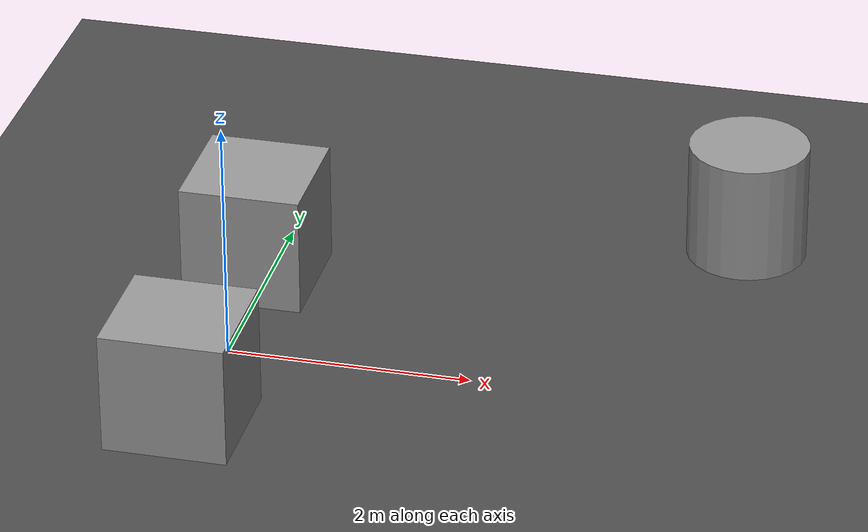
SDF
<sdf version="1.6">
 <world name="default">
  <light name="sun" type="directional">
   <pose>0 0 10 0 -0 0</pose>
   <diffuse>0.8 0.8 0.8 1</diffuse>
   <specular>0.2 0.2 0.2 1</specular>
   <attenuation>
    <range>1000</range>
    <constant>0.9</constant>
    <linear>0.01</linear>
    <quadratic>0.001</quadratic>
   </attenuation>
   <direction>-0.5 0.1 -0.9</direction>
  </light>
  <model name="ground_plane">
   <static>1</static>
   <link name="link">
    <collision name="collision">
     <geometry><plane><normal>0 0 1</normal><size>100 100</size></plane></geometry>
     <surface><friction><ode><mu>100</mu><mu2>50</mu2></ode></friction></surface>
    </collision>
    <visual name="visual">
     <cast_shadows>0</cast_shadows>
     <geometry><plane><normal>0 0 1</normal><size>100 100</size></plane></geometry>
     <material>
      <script><uri>file://media/materials/scripts/gazebo.material</uri><name>Gazebo/Grey</name></script>
     </material>
    </visual>
    <velocity_decay><linear>0</linear><angular>0</angular></velocity_decay>
   </link>
  </model>
  <physics name="default_physics" default="0" type="ode">
   <max_step_size>0.01</max_step_size>
   <real_time_factor>1</real_time_factor>
   <real_time_update_rate>100</real_time_update_rate>
  </physics>
  <scene>
   <ambient>0.4 0.4 0.4 1</ambient>
   <background>0.7 0.7 0.7 1</background>
   <shadows>1</shadows>
   <sky><clouds><speed>12</speed></clouds></sky>
  </scene>
  <model name="asphalt_plane">
   <static>1</static>
   <link name="link">
    <collision name="collision"><geometry><box><size>20 20 0.1</size></box></geometry></collision>
    <visual name="visual">
     <cast_shadows>0</cast_shadows>
     <geometry><box><size>20 20 0.1</size></box></geometry>
     <material>
      <script>
       <uri>model://asphalt_plane/materials/scripts</uri>
       <uri>model://asphalt_plane/materials/textures</uri>
       <name>vrc/asphalt</name>
      </script>
     </material>
    </visual>
    <velocity_decay><linear>0</linear><angular>0</angular></velocity_decay>
   </link>
   <pose>0.047328 -0.078074 0 0 -0 0</pose>
  </model>
  <gravity>0 0 -9.8</gravity>
  <magnetic_field>6e-06 2.3e-05 -4.2e-05</magnetic_field>
  <atmosphere type="adiabatic"/>
  <audio><device>default</device></audio>
  <spherical_coordinates>
   <surface_model>EARTH_WGS84</surface_model>
   <latitude_deg>0</latitude_deg>
   <longitude_deg>0</longitude_deg>
   <elevation>0</elevation>
   <heading_deg>0</heading_deg>
  </spherical_coordinates>
  <model name="unit_box">
   <pose>-0.019663 -1.22457 0.54967 -0.00066 -0 -5e-06</pose>
   <link name="link">
    <inertial>
     <mass>1</mass>
     <inertia>
      <ixx>0.166667</ixx>
      <ixy>0</ixy>
      <ixz>0</ixz>
      <iyy>0.166667</iyy>
      <iyz>0</iyz>
      <izz>0.166667</izz>
     </inertia>
    </inertial>
    <collision name="collision"><geometry><box><size>1 1 1</size></box></geometry></collision>
    <visual name="visual">
     <geometry><box><size>1 1 1</size></box></geometry>
     <material>
      <script><name>Gazebo/Grey</name><uri>file://media/materials/scripts/gazebo.material</uri></script>
     </material>
    </visual>
   </link>
  </model>
  <model name="unit_box_0">
   <pose>-0.071597 1.14029 0.54967 -0.00066 -0 -5e-06</pose>
   <link name="link">
    <inertial>
     <mass>1</mass>
     <inertia>
      <ixx>0.166667</ixx>
      <ixy>0</ixy>
      <ixz>0</ixz>
      <iyy>0.166667</iyy>
      <iyz>0</iyz>
      <izz>0.166667</izz>
     </inertia>
    </inertial>
    <collision name="collision"><geometry><box><size>1 1 1</size></box></geometry></collision>
    <visual name="visual">
     <geometry><box><size>1 1 1</size></box></geometry>
     <material>
      <script><name>Gazebo/Grey</name><uri>file://media/materials/scripts/gazebo.material</uri></script>
     </material>
    </visual>
   </link>
  </model>
  <model name="unit_cylinder">
   <pose>3.77513 2.48145 0.55006 8.9e-05 8e-05 0.001485</pose>
   <link name="link">
    <inertial>
     <mass>1</mass>
     <inertia><ixx>0.145833</ixx><ixy>0</ixy><ixz>0</ixz><iyy>0.145833</iyy><iyz>0</iyz><izz>0.125</izz></inertia>
    </inertial>
    <collision name="collision">
     <geometry><cylinder><radius>0.5</radius><length>1</length></cylinder></geometry>
    </collision>
    <visual name="visual">
     <geometry><cylinder><radius>0.5</radius><length>1</length></cylinder></geometry>
     <material>
      <script><name>Gazebo/Grey</name><uri>file://media/materials/scripts/gazebo.material</uri></script>
     </material>
    </visual>
   </link>
  </model>
 </world>
</sdf>
